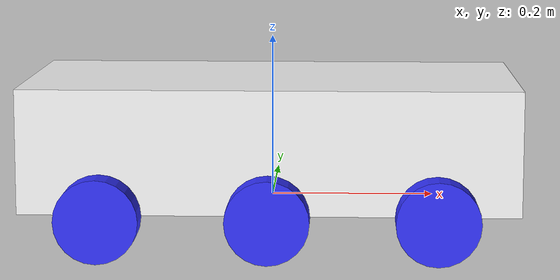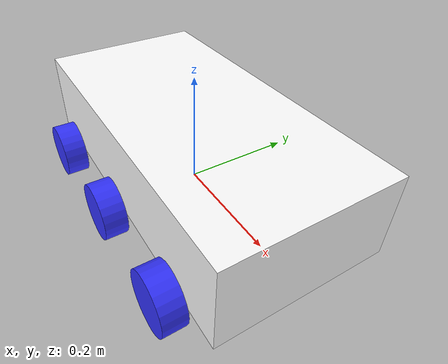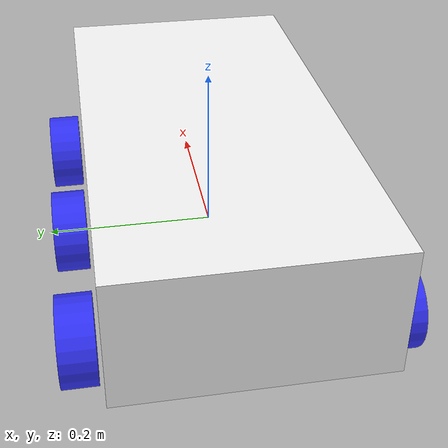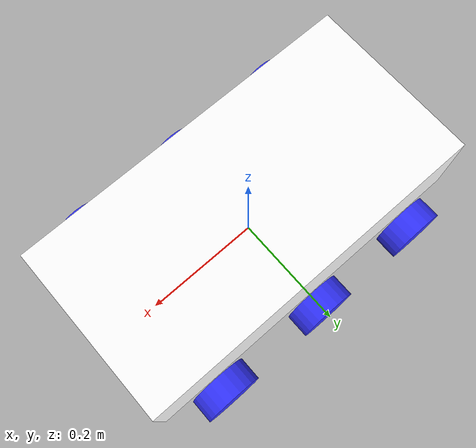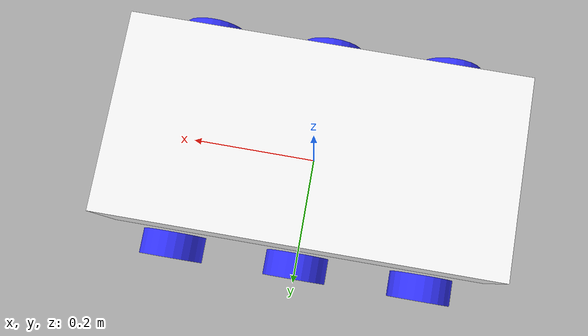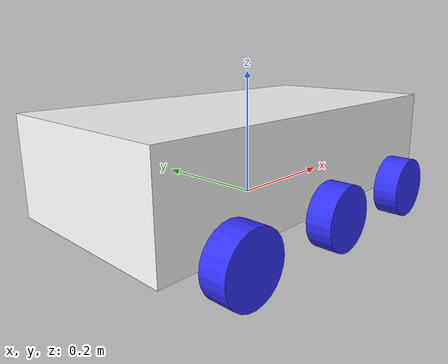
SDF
<sdf version='1.7'>
  <model name='robot'>
    <link name='base_link'>
      <inertial>
        <pose>0 0 0.075 0 -0 0</pose>
        <mass>1</mass>
        <inertia>
          <ixx>0.009375</ixx>
          <ixy>0</ixy>
          <ixz>0</ixz>
          <iyy>0.031875</iyy>
          <iyz>0</iyz>
          <izz>0.0375</izz>
        </inertia>
      </inertial>
      <collision name='base_link_fixed_joint_lump__chassis_collision'>
        <pose>0 0 0.075 0 -0 0</pose>
        <geometry>
          <box>
            <size>0.6 0.3 0.15</size>
          </box>
        </geometry>
        <surface>
          <contact>
            <ode/>
          </contact>
          <friction>
            <ode/>
          </friction>
        </surface>
      </collision>
      <visual name='base_link_fixed_joint_lump__chassis_visual'>
        <pose>0 0 0.075 0 -0 0</pose>
        <geometry>
          <box>
            <size>0.6 0.3 0.15</size>
          </box>
        </geometry>
        <material>
          <ambient>1 1 1 1</ambient>
          <diffuse>1 1 1 1</diffuse>
          <specular>0.5 0.5 0.5 1</specular>
        </material>
      </visual>
    </link>
    <joint name='left_back_wheel_joint' type='revolute'>
      <pose relative_to='base_link'>-0.2 0.175 0 1.5708 -0 0</pose>
      <parent>base_link</parent>
      <child>left_back_wheel</child>
      <axis>
        <xyz>0 0 -1</xyz>
        <limit>
          <lower>-1e+16</lower>
          <upper>1e+16</upper>
        </limit>
        <dynamics>
          <spring_reference>0</spring_reference>
          <spring_stiffness>0</spring_stiffness>
        </dynamics>
      </axis>
    </joint>
    <link name='left_back_wheel'>
      <pose relative_to='left_back_wheel_joint'>0 0 0 0 -0 0</pose>
      <inertial>
        <pose>0 0 0 0 -0 0</pose>
        <mass>0.1</mass>
        <inertia>
          <ixx>7.58333e-05</ixx>
          <ixy>0</ixy>
          <ixz>0</ixz>
          <iyy>7.58333e-05</iyy>
          <iyz>0</iyz>
          <izz>0.000125</izz>
        </inertia>
      </inertial>
      <collision name='left_back_wheel_collision'>
        <pose>0 0 0 0 -0 0</pose>
        <geometry>
          <cylinder>
            <length>0.04</length>
            <radius>0.05</radius>
          </cylinder>
        </geometry>
        <surface>
          <contact>
            <ode/>
          </contact>
          <friction>
            <ode>
              <mu>0.2</mu>
              <mu2>0.2</mu2>
            </ode>
          </friction>
        </surface>
      </collision>
      <visual name='left_back_wheel_visual'>
        <pose>0 0 0 0 -0 0</pose>
        <geometry>
          <cylinder>
            <length>0.04</length>
            <radius>0.05</radius>
          </cylinder>
        </geometry>
        <material>
          <ambient>0.2 0.2 1 1</ambient>
          <diffuse>0.2 0.2 1 1</diffuse>
        </material>
      </visual>
    </link>
    <joint name='left_front_wheel_joint' type='revolute'>
      <pose relative_to='base_link'>0.2 0.175 0 1.5708 -0 0</pose>
      <parent>base_link</parent>
      <child>left_front_wheel</child>
      <axis>
        <xyz>0 0 -1</xyz>
        <limit>
          <lower>-1e+16</lower>
          <upper>1e+16</upper>
        </limit>
        <dynamics>
          <spring_reference>0</spring_reference>
          <spring_stiffness>0</spring_stiffness>
        </dynamics>
      </axis>
    </joint>
    <link name='left_front_wheel'>
      <pose relative_to='left_front_wheel_joint'>0 0 0 0 -0 0</pose>
      <inertial>
        <pose>0 0 0 0 -0 0</pose>
        <mass>0.1</mass>
        <inertia>
          <ixx>7.58333e-05</ixx>
          <ixy>0</ixy>
          <ixz>0</ixz>
          <iyy>7.58333e-05</iyy>
          <iyz>0</iyz>
          <izz>0.000125</izz>
        </inertia>
      </inertial>
      <collision name='left_front_wheel_collision'>
        <pose>0 0 0 0 -0 0</pose>
        <geometry>
          <cylinder>
            <length>0.04</length>
            <radius>0.05</radius>
          </cylinder>
        </geometry>
        <surface>
          <contact>
            <ode/>
          </contact>
          <friction>
            <ode>
              <mu>0.2</mu>
              <mu2>0.2</mu2>
            </ode>
          </friction>
        </surface>
      </collision>
      <visual name='left_front_wheel_visual'>
        <pose>0 0 0 0 -0 0</pose>
        <geometry>
          <cylinder>
            <length>0.04</length>
            <radius>0.05</radius>
          </cylinder>
        </geometry>
        <material>
          <ambient>0.2 0.2 1 1</ambient>
          <diffuse>0.2 0.2 1 1</diffuse>
        </material>
      </visual>
    </link>
    <joint name='left_middle_wheel_joint' type='revolute'>
      <pose relative_to='base_link'>0 0.175 0 1.5708 -0 0</pose>
      <parent>base_link</parent>
      <child>left_middle_wheel</child>
      <axis>
        <xyz>0 0 -1</xyz>
        <limit>
          <lower>-1e+16</lower>
          <upper>1e+16</upper>
        </limit>
        <dynamics>
          <spring_reference>0</spring_reference>
          <spring_stiffness>0</spring_stiffness>
        </dynamics>
      </axis>
    </joint>
    <link name='left_middle_wheel'>
      <pose relative_to='left_middle_wheel_joint'>0 0 0 0 -0 0</pose>
      <inertial>
        <pose>0 0 0 0 -0 0</pose>
        <mass>0.1</mass>
        <inertia>
          <ixx>7.58333e-05</ixx>
          <ixy>0</ixy>
          <ixz>0</ixz>
          <iyy>7.58333e-05</iyy>
          <iyz>0</iyz>
          <izz>0.000125</izz>
        </inertia>
      </inertial>
      <collision name='left_middle_wheel_collision'>
        <pose>0 0 0 0 -0 0</pose>
        <geometry>
          <cylinder>
            <length>0.04</length>
            <radius>0.05</radius>
          </cylinder>
        </geometry>
        <surface>
          <contact>
            <ode/>
          </contact>
          <friction>
            <ode>
              <mu>0.2</mu>
              <mu2>0.2</mu2>
            </ode>
          </friction>
        </surface>
      </collision>
      <visual name='left_middle_wheel_visual'>
        <pose>0 0 0 0 -0 0</pose>
        <geometry>
          <cylinder>
            <length>0.04</length>
            <radius>0.05</radius>
          </cylinder>
        </geometry>
        <material>
          <ambient>0.2 0.2 1 1</ambient>
          <diffuse>0.2 0.2 1 1</diffuse>
        </material>
      </visual>
    </link>
    <joint name='right_back_wheel_joint' type='revolute'>
      <pose relative_to='base_link'>-0.2 -0.175 0 -1.5708 0 0</pose>
      <parent>base_link</parent>
      <child>right_back_wheel</child>
      <axis>
        <xyz>0 0 1</xyz>
        <limit>
          <lower>-1e+16</lower>
          <upper>1e+16</upper>
        </limit>
        <dynamics>
          <spring_reference>0</spring_reference>
          <spring_stiffness>0</spring_stiffness>
        </dynamics>
      </axis>
    </joint>
    <link name='right_back_wheel'>
      <pose relative_to='right_back_wheel_joint'>0 0 0 0 -0 0</pose>
      <inertial>
        <pose>0 0 0 0 -0 0</pose>
        <mass>0.1</mass>
        <inertia>
          <ixx>7.58333e-05</ixx>
          <ixy>0</ixy>
          <ixz>0</ixz>
          <iyy>7.58333e-05</iyy>
          <iyz>0</iyz>
          <izz>0.000125</izz>
        </inertia>
      </inertial>
      <collision name='right_back_wheel_collision'>
        <pose>0 0 0 0 -0 0</pose>
        <geometry>
          <cylinder>
            <length>0.04</length>
            <radius>0.05</radius>
          </cylinder>
        </geometry>
        <surface>
          <contact>
            <ode/>
          </contact>
          <friction>
            <ode>
              <mu>0.2</mu>
              <mu2>0.2</mu2>
            </ode>
          </friction>
        </surface>
      </collision>
      <visual name='right_back_wheel_visual'>
        <pose>0 0 0 0 -0 0</pose>
        <geometry>
          <cylinder>
            <length>0.04</length>
            <radius>0.05</radius>
          </cylinder>
        </geometry>
        <material>
          <ambient>0.2 0.2 1 1</ambient>
          <diffuse>0.2 0.2 1 1</diffuse>
        </material>
      </visual>
    </link>
    <joint name='right_front_wheel_joint' type='revolute'>
      <pose relative_to='base_link'>0.2 -0.175 0 -1.5708 0 0</pose>
      <parent>base_link</parent>
      <child>right_front_wheel</child>
      <axis>
        <xyz>0 0 1</xyz>
        <limit>
          <lower>-1e+16</lower>
          <upper>1e+16</upper>
        </limit>
        <dynamics>
          <spring_reference>0</spring_reference>
          <spring_stiffness>0</spring_stiffness>
        </dynamics>
      </axis>
    </joint>
    <link name='right_front_wheel'>
      <pose relative_to='right_front_wheel_joint'>0 0 0 0 -0 0</pose>
      <inertial>
        <pose>0 0 0 0 -0 0</pose>
        <mass>0.1</mass>
        <inertia>
          <ixx>7.58333e-05</ixx>
          <ixy>0</ixy>
          <ixz>0</ixz>
          <iyy>7.58333e-05</iyy>
          <iyz>0</iyz>
          <izz>0.000125</izz>
        </inertia>
      </inertial>
      <collision name='right_front_wheel_collision'>
        <pose>0 0 0 0 -0 0</pose>
        <geometry>
          <cylinder>
            <length>0.04</length>
            <radius>0.05</radius>
          </cylinder>
        </geometry>
        <surface>
          <contact>
            <ode/>
          </contact>
          <friction>
            <ode>
              <mu>0.2</mu>
              <mu2>0.2</mu2>
            </ode>
          </friction>
        </surface>
      </collision>
      <visual name='right_front_wheel_visual'>
        <pose>0 0 0 0 -0 0</pose>
        <geometry>
          <cylinder>
            <length>0.04</length>
            <radius>0.05</radius>
          </cylinder>
        </geometry>
        <material>
          <ambient>0.2 0.2 1 1</ambient>
          <diffuse>0.2 0.2 1 1</diffuse>
        </material>
      </visual>
    </link>
    <joint name='right_middle_wheel_joint' type='revolute'>
      <pose relative_to='base_link'>0 -0.175 0 -1.5708 0 0</pose>
      <parent>base_link</parent>
      <child>right_middle_wheel</child>
      <axis>
        <xyz>0 0 1</xyz>
        <limit>
          <lower>-1e+16</lower>
          <upper>1e+16</upper>
        </limit>
        <dynamics>
          <spring_reference>0</spring_reference>
          <spring_stiffness>0</spring_stiffness>
        </dynamics>
      </axis>
    </joint>
    <link name='right_middle_wheel'>
      <pose relative_to='right_middle_wheel_joint'>0 0 0 0 -0 0</pose>
      <inertial>
        <pose>0 0 0 0 -0 0</pose>
        <mass>0.1</mass>
        <inertia>
          <ixx>7.58333e-05</ixx>
          <ixy>0</ixy>
          <ixz>0</ixz>
          <iyy>7.58333e-05</iyy>
          <iyz>0</iyz>
          <izz>0.000125</izz>
        </inertia>
      </inertial>
      <collision name='right_middle_wheel_collision'>
        <pose>0 0 0 0 -0 0</pose>
        <geometry>
          <cylinder>
            <length>0.04</length>
            <radius>0.05</radius>
          </cylinder>
        </geometry>
        <surface>
          <contact>
            <ode/>
          </contact>
          <friction>
            <ode>
              <mu>0.2</mu>
              <mu2>0.2</mu2>
            </ode>
          </friction>
        </surface>
      </collision>
      <visual name='right_middle_wheel_visual'>
        <pose>0 0 0 0 -0 0</pose>
        <geometry>
          <cylinder>
            <length>0.04</length>
            <radius>0.05</radius>
          </cylinder>
        </geometry>
        <material>
          <ambient>0.2 0.2 1 1</ambient>
          <diffuse>0.2 0.2 1 1</diffuse>
        </material>
      </visual>
    </link>
    <static>0</static>
    <plugin name='gz::sim::systems::DiffDrive' filename='gz-sim-diff-drive-system'>
      <left_joint>left_front_wheel_joint</left_joint>
      <left_joint>left_middle_wheel_joint</left_joint>
      <left_joint>left_back_wheel_joint</left_joint>
      <right_joint>right_front_wheel_joint</right_joint>
      <right_joint>right_middle_wheel_joint</right_joint>
      <right_joint>right_back_wheel_joint</right_joint>
      <wheel_separation>0.35</wheel_separation>
      <wheel_radius>0.05</wheel_radius>
      <topic>cmd_vel</topic>
      <odom_topic>odom</odom_topic>
      <tf_topic>tf</tf_topic>
      <frame_id>odom</frame_id>
      <child_frame_id>base_link</child_frame_id>
      <odom_publisher_frequency>30</odom_publisher_frequency>
      <max_linear_acceleration>10.0</max_linear_acceleration>
      <max_angular_acceleration>10.0</max_angular_acceleration>
    </plugin>
    <plugin name='gz::sim::systems::JointStatePublisher' filename='gz-sim-joint-state-publisher-system'>
      <topic>joint_states</topic>
    </plugin>
  </model>
</sdf>
